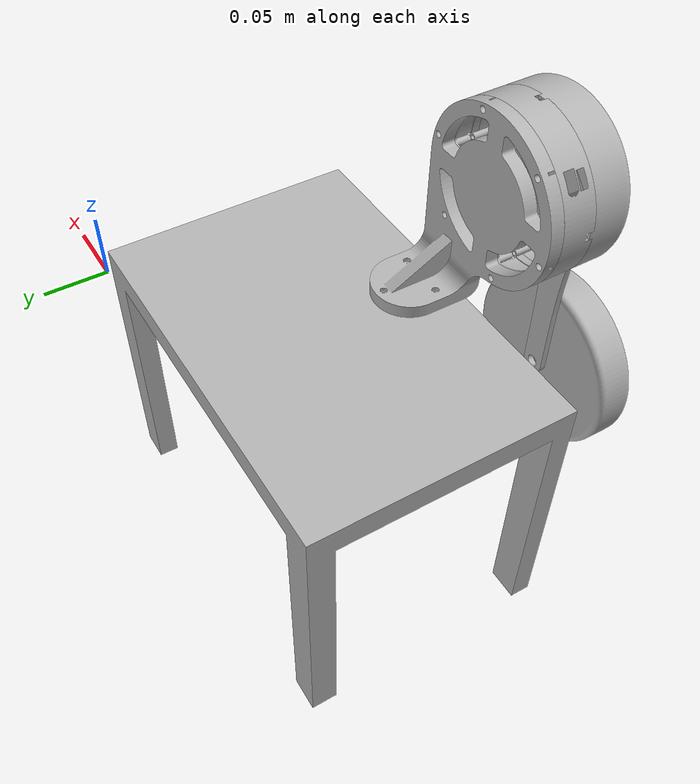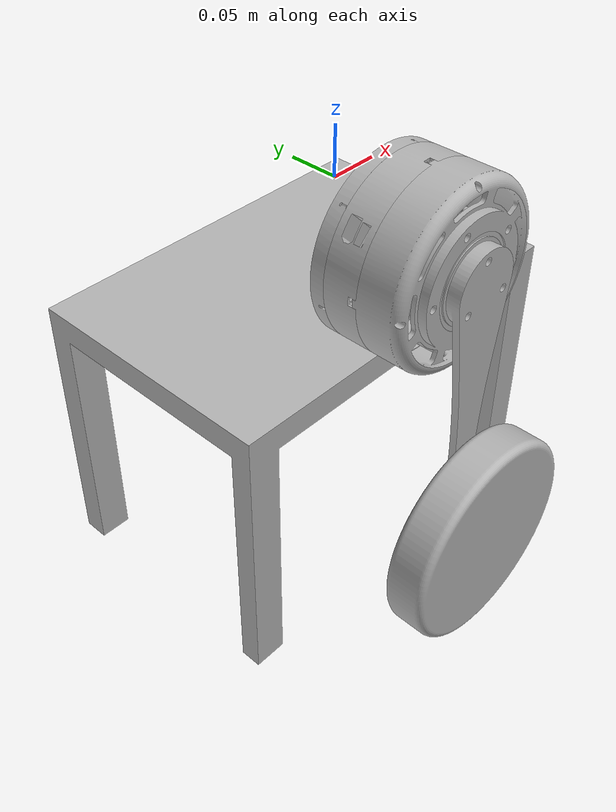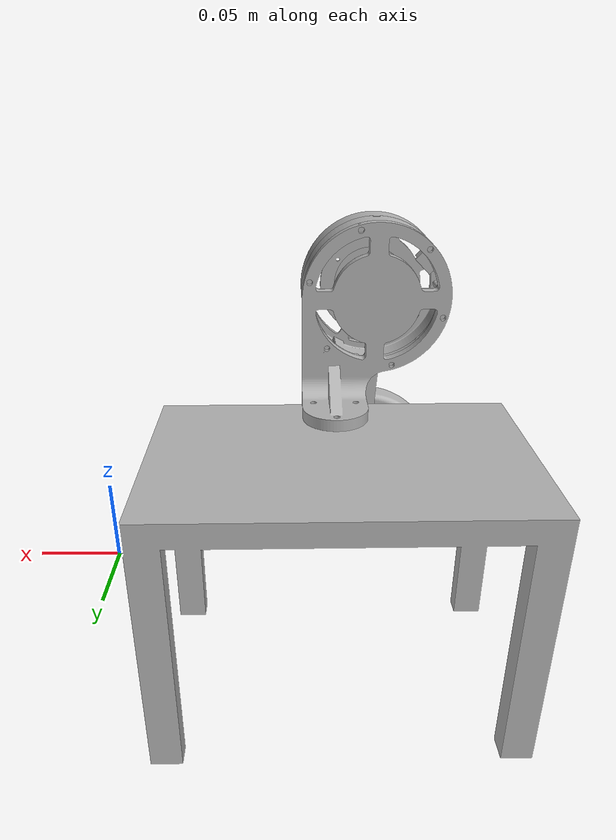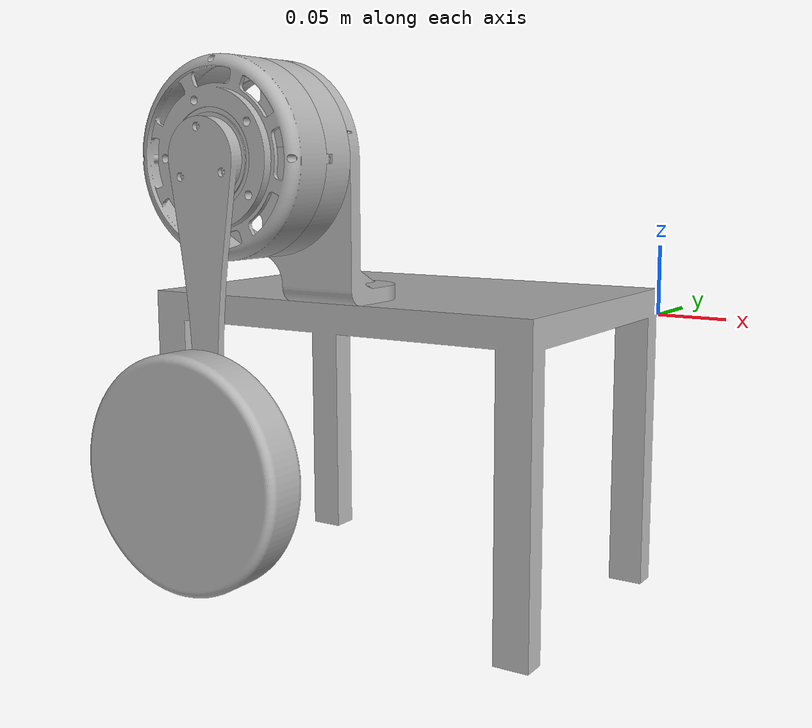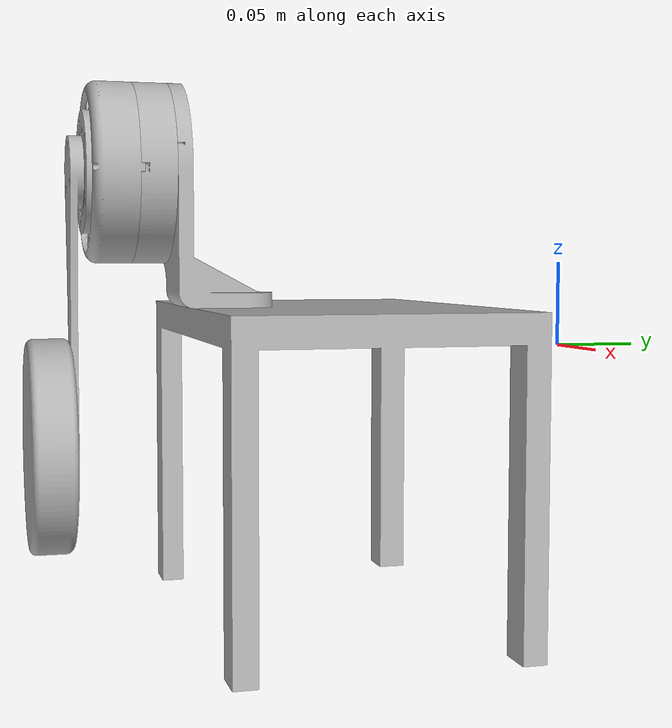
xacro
<?xml version="1.0" ?>
<robot name="Fusion2URDF" xmlns:xacro="http://www.ros.org/wiki/xacro">

<xacro:include filename="$(find Fusion2URDF_description)/urdf/materials.xacro" />
<xacro:include filename="$(find Fusion2URDF_description)/urdf/Fusion2URDF.trans" />
<xacro:include filename="$(find Fusion2URDF_description)/urdf/Fusion2URDF.gazebo" />
<link name="base_link">
  <inertial>
    <origin xyz="-0.15239089248396806 -0.10243188731128752 -0.014756658436731226" rpy="0 0 0"/>
    <mass value="12.10296352271439"/>
    <inertia ixx="0.088382" iyy="0.156005" izz="0.175336" ixy="0.001695" iyz="0.001069" ixz="-0.001793"/>
  </inertial>
  <visual>
    <origin xyz="0 0 0" rpy="0 0 0"/>
    <geometry>
      <mesh filename="package://Fusion2URDF_description/meshes/base_link.stl" scale="0.001 0.001 0.001"/>
    </geometry>
    <material name="silver"/>
  </visual>
  <collision>
    <origin xyz="0 0 0" rpy="0 0 0"/>
    <geometry>
      <mesh filename="package://Fusion2URDF_description/meshes/base_link.stl" scale="0.001 0.001 0.001"/>
    </geometry>
  </collision>
</link>

<link name="motor_mount_1">
  <inertial>
    <origin xyz="-0.01981276318460265 -0.04982898469216032 0.06040931610563551" rpy="0 0 0"/>
    <mass value="1.1722540905080954"/>
    <inertia ixx="0.002714" iyy="0.003585" izz="0.001392" ixy="-0.000166" iyz="0.00045" ixz="0.000773"/>
  </inertial>
  <visual>
    <origin xyz="0.15066 0.151463 -0.019629" rpy="0 0 0"/>
    <geometry>
      <mesh filename="package://Fusion2URDF_description/meshes/motor_mount_1.stl" scale="0.001 0.001 0.001"/>
    </geometry>
    <material name="silver"/>
  </visual>
  <collision>
    <origin xyz="0.15066 0.151463 -0.019629" rpy="0 0 0"/>
    <geometry>
      <mesh filename="package://Fusion2URDF_description/meshes/motor_mount_1.stl" scale="0.001 0.001 0.001"/>
    </geometry>
  </collision>
</link>

<link name="front_case_1">
  <inertial>
    <origin xyz="0.004747964856895576 -0.0037055665782579073 -0.000474430017634489" rpy="0 0 0"/>
    <mass value="0.8962608123125344"/>
    <inertia ixx="0.001757" iyy="0.002692" izz="0.001716" ixy="-7.9e-05" iyz="2e-06" ixz="6e-06"/>
  </inertial>
  <visual>
    <origin xyz="0.185535 0.237733 -0.112179" rpy="0 0 0"/>
    <geometry>
      <mesh filename="package://Fusion2URDF_description/meshes/front_case_1.stl" scale="0.001 0.001 0.001"/>
    </geometry>
    <material name="silver"/>
  </visual>
  <collision>
    <origin xyz="0.185535 0.237733 -0.112179" rpy="0 0 0"/>
    <geometry>
      <mesh filename="package://Fusion2URDF_description/meshes/front_case_1.stl" scale="0.001 0.001 0.001"/>
    </geometry>
  </collision>
</link>

<link name="rear_case_241023_1">
  <inertial>
    <origin xyz="-0.0018600683258184203 -0.00819787091579846 -0.0010903891552709044" rpy="0 0 0"/>
    <mass value="0.21930558501864583"/>
    <inertia ixx="0.000346" iyy="0.000681" izz="0.000363" ixy="1e-06" iyz="3e-06" ixz="1.2e-05"/>
  </inertial>
  <visual>
    <origin xyz="0.185535 0.213463 -0.112179" rpy="0 0 0"/>
    <geometry>
      <mesh filename="package://Fusion2URDF_description/meshes/rear_case_241023_1.stl" scale="0.001 0.001 0.001"/>
    </geometry>
    <material name="silver"/>
  </visual>
  <collision>
    <origin xyz="0.185535 0.213463 -0.112179" rpy="0 0 0"/>
    <geometry>
      <mesh filename="package://Fusion2URDF_description/meshes/rear_case_241023_1.stl" scale="0.001 0.001 0.001"/>
    </geometry>
  </collision>
</link>

<link name="planetary_gearset_rotor_bottom_1">
  <inertial>
    <origin xyz="-3.562159705261525e-07 0.004693595537344553 -4.2982606343611174e-07" rpy="0 0 0"/>
    <mass value="0.1070548461839941"/>
    <inertia ixx="2.1e-05" iyy="4e-05" izz="2.1e-05" ixy="0.0" iyz="0.0" ixz="0.0"/>
  </inertial>
  <visual>
    <origin xyz="0.185535 0.271333 -0.112179" rpy="0 0 0"/>
    <geometry>
      <mesh filename="package://Fusion2URDF_description/meshes/planetary_gearset_rotor_bottom_1.stl" scale="0.001 0.001 0.001"/>
    </geometry>
    <material name="silver"/>
  </visual>
  <collision>
    <origin xyz="0.185535 0.271333 -0.112179" rpy="0 0 0"/>
    <geometry>
      <mesh filename="package://Fusion2URDF_description/meshes/planetary_gearset_rotor_bottom_1.stl" scale="0.001 0.001 0.001"/>
    </geometry>
  </collision>
</link>

<link name="bearing_1">
  <inertial>
    <origin xyz="-3.5668971021252105e-07 -0.003500416695875974 -4.298609793673691e-07" rpy="0 0 0"/>
    <mass value="0.008940871381981142"/>
    <inertia ixx="4e-06" iyy="8e-06" izz="4e-06" ixy="0.0" iyz="0.0" ixz="0.0"/>
  </inertial>
  <visual>
    <origin xyz="0.185535 0.263333 -0.112179" rpy="0 0 0"/>
    <geometry>
      <mesh filename="package://Fusion2URDF_description/meshes/bearing_1.stl" scale="0.001 0.001 0.001"/>
    </geometry>
    <material name="silver"/>
  </visual>
  <collision>
    <origin xyz="0.185535 0.263333 -0.112179" rpy="0 0 0"/>
    <geometry>
      <mesh filename="package://Fusion2URDF_description/meshes/bearing_1.stl" scale="0.001 0.001 0.001"/>
    </geometry>
  </collision>
</link>

<link name="test_bar_1">
  <inertial>
    <origin xyz="-0.2703333566338234 0.17870476849989464 -0.16287648681238087" rpy="0 0 0"/>
    <mass value="0.33133706662052054"/>
    <inertia ixx="0.001228" iyy="0.001264" izz="4.1e-05" ixy="0.0" iyz="-2e-05" ixz="0.0"/>
  </inertial>
  <visual>
    <origin xyz="-0.084798 0.455869 -0.224357" rpy="0 0 0"/>
    <geometry>
      <mesh filename="package://Fusion2URDF_description/meshes/test_bar_1.stl" scale="0.001 0.001 0.001"/>
    </geometry>
    <material name="silver"/>
  </visual>
  <collision>
    <origin xyz="-0.084798 0.455869 -0.224357" rpy="0 0 0"/>
    <geometry>
      <mesh filename="package://Fusion2URDF_description/meshes/test_bar_1.stl" scale="0.001 0.001 0.001"/>
    </geometry>
  </collision>
</link>

<link name="mass_plate_1">
  <inertial>
    <origin xyz="-3.5654069860391324e-07 -0.015000416695875984 -4.2986097931185796e-07" rpy="0 0 0"/>
    <mass value="13.129065500806407"/>
    <inertia ixx="0.019268" iyy="0.036596" izz="0.019268" ixy="0.0" iyz="0.0" ixz="-0.0"/>
  </inertial>
  <visual>
    <origin xyz="0.185535 0.280833 0.077821" rpy="0 0 0"/>
    <geometry>
      <mesh filename="package://Fusion2URDF_description/meshes/mass_plate_1.stl" scale="0.001 0.001 0.001"/>
    </geometry>
    <material name="silver"/>
  </visual>
  <collision>
    <origin xyz="0.185535 0.280833 0.077821" rpy="0 0 0"/>
    <geometry>
      <mesh filename="package://Fusion2URDF_description/meshes/mass_plate_1.stl" scale="0.001 0.001 0.001"/>
    </geometry>
  </collision>
</link>

<joint name="°­Ã¼ 7" type="fixed">
  <origin xyz="-0.15066 -0.151463 0.019629" rpy="0 0 0"/>
  <parent link="base_link"/>
  <child link="motor_mount_1"/>
</joint>

<joint name="°­Ã¼ 9" type="fixed">
  <origin xyz="0.0 -0.02427 0.0" rpy="0 0 0"/>
  <parent link="rear_case_241023_1"/>
  <child link="front_case_1"/>
</joint>

<joint name="°­Ã¼ 10" type="fixed">
  <origin xyz="-0.034875 -0.062 0.09255" rpy="0 0 0"/>
  <parent link="motor_mount_1"/>
  <child link="rear_case_241023_1"/>
</joint>

<joint name="°­Ã¼ 11" type="fixed">
  <origin xyz="0.0 -0.0336 0.0" rpy="0 0 0"/>
  <parent link="front_case_1"/>
  <child link="planetary_gearset_rotor_bottom_1"/>
</joint>

<joint name="°­Ã¼ 12" type="fixed">
  <origin xyz="0.0 0.008 0.0" rpy="0 0 0"/>
  <parent link="planetary_gearset_rotor_bottom_1"/>
  <child link="bearing_1"/>
</joint>

<joint name="È¸Àü 13" type="continuous">
  <origin xyz="0.270333 -0.192536 0.112178" rpy="0 0 0"/>
  <parent link="bearing_1"/>
  <child link="test_bar_1"/>
  <axis xyz="0.0 1.0 0.0"/>
</joint>

<joint name="°­Ã¼ 14" type="fixed">
  <origin xyz="-0.270333 0.175036 -0.302178" rpy="0 0 0"/>
  <parent link="test_bar_1"/>
  <child link="mass_plate_1"/>
</joint>

</robot>

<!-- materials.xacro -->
<robot name="Fusion2URDF" xmlns:xacro="http://www.ros.org/wiki/xacro" >

<material name="silver">
  <color rgba="0.700 0.700 0.700 1.000"/>
</material>

</robot>

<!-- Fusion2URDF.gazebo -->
<robot name="Fusion2URDF" xmlns:xacro="http://www.ros.org/wiki/xacro" >

<xacro:property name="body_color" value="Gazebo/Silver" />

<gazebo>
  <plugin name="control" filename="libgazebo_ros_control.so"/>
</gazebo>
<gazebo reference="base_link">
  <material>${body_color}</material>
  <mu1>0.2</mu1>
  <mu2>0.2</mu2>
  <selfCollide>true</selfCollide>
  <gravity>true</gravity>
</gazebo>

<gazebo reference="motor_mount_1">
  <material>${body_color}</material>
  <mu1>0.2</mu1>
  <mu2>0.2</mu2>
  <selfCollide>true</selfCollide>
</gazebo>

<gazebo reference="front_case_1">
  <material>${body_color}</material>
  <mu1>0.2</mu1>
  <mu2>0.2</mu2>
  <selfCollide>true</selfCollide>
</gazebo>

<gazebo reference="rear_case_241023_1">
  <material>${body_color}</material>
  <mu1>0.2</mu1>
  <mu2>0.2</mu2>
  <selfCollide>true</selfCollide>
</gazebo>

<gazebo reference="mass_plate_1">
  <material>${body_color}</material>
  <mu1>0.2</mu1>
  <mu2>0.2</mu2>
  <selfCollide>true</selfCollide>
</gazebo>

<gazebo reference="bearing_1">
  <material>${body_color}</material>
  <mu1>0.2</mu1>
  <mu2>0.2</mu2>
  <selfCollide>true</selfCollide>
</gazebo>

<gazebo reference="test_bar_1">
  <material>${body_color}</material>
  <mu1>0.2</mu1>
  <mu2>0.2</mu2>
  <selfCollide>true</selfCollide>
</gazebo>

</robot>
